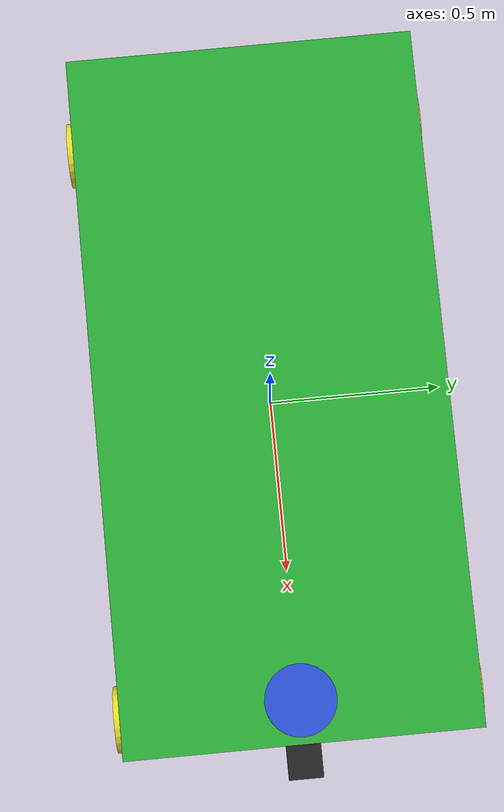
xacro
<?xml version="1.0"?>
<robot name="differential_drive_robot" xmlns:xacro="http://www.ros.org/wiki/xacro">

<xacro:property name="body_link_x_dim" value="2"/>
<xacro:property name="body_link_y_dim" value="1"/>
<xacro:property name="body_link_z_dim" value="0.6"/>

<xacro:property name="wheel_link_radius" value="0.1"/>
<xacro:property name="wheel_link_length" value="0.05"/>
<xacro:property name="wheel_link_z_location" value="-0.25"/>

<xacro:property name="body_density" value="2710.0"/>
<xacro:property name="wheel_density" value="2710.0"/>

<xacro:property name="pi_const" value="3.14159265"/>

<xacro:property name="body_mass" value="${body_density*body_link_x_dim*body_link_y_dim*body_link_z_dim}"/>

<xacro:property name="wheel_mass" value="${wheel_density*pi_const*wheel_link_radius*wheel_link_radius*wheel_link_length}"/>

<xacro:property name="Iz_wheel" value="${0.5*wheel_mass*wheel_link_radius*wheel_link_radius}"/>
<xacro:property name="I_wheel" value="${(1.0/12.0)*wheel_mass*(3.0*wheel_link_radius*wheel_link_radius+wheel_link_length*wheel_link_length)}"/>

<xacro:macro name="inertia_wheel">
    <inertial>
        <origin rpy="0 0 0" xyz="0 0 0"/>
        <mass value="${wheel_mass}"/>
        <inertia ixx="${I_wheel}" ixy="0.0" ixz="0.0" iyy="${I_wheel}" iyz="0" izz="${Iz_wheel}"/>
    </inertial>
</xacro:macro>

<xacro:include filename="$(find amr_1)/model/amr1.gazebo"/>

<!-- Dummy link for Gazebo compatibility -->
<link name="dummy">
</link>
<joint name="dummy_joint" type="fixed">
    <parent link="dummy"/>
    <child link="body_link"/>
</joint>

<!-- Main body link -->
<link name="body_link">
    <visual>
        <geometry>
            <box size="${body_link_x_dim} ${body_link_y_dim} ${body_link_z_dim}"/>
        </geometry>
        <origin rpy="0 0 0" xyz="0 0 0"/>
    </visual>

    <collision>
        <geometry>
            <box size="${body_link_x_dim} ${body_link_y_dim} ${body_link_z_dim}"/>
        </geometry>
        <origin rpy="0 0 0" xyz="0 0 0"/>
    </collision>

    <inertial>
        <origin rpy="0 0 0" xyz="0 0 0"/>
        <mass value="${body_mass}"/>
        <inertia
            ixx="${(1/12)*body_mass*(body_link_y_dim*body_link_y_dim + body_link_z_dim*body_link_z_dim)}"
            ixy="0" ixz="0"
            iyy="${(1/12)*body_mass*(body_link_x_dim*body_link_x_dim + body_link_z_dim*body_link_z_dim)}"
            iyz="0"
            izz="${(1/12)*body_mass*(body_link_y_dim*body_link_y_dim + body_link_x_dim*body_link_x_dim)}"/>
    </inertial>
</link>

<!-- Back right wheel -->
<joint name="wheel1_joint" type="continuous">
    <parent link="body_link"/>
    <child link="wheel1_link"/>
    <origin xyz="${-body_link_x_dim/2+1.2*wheel_link_radius} ${-body_link_y_dim/2-wheel_link_length/2} ${wheel_link_z_location}" rpy="0 0 0"/>
    <axis xyz="0 1 0"/>
    <limit effort="1000" velocity="1000"/>
    <dynamics damping="1.0" friction="1.0"/>
</joint>

<link name="wheel1_link">
    <visual>
        <origin rpy="1.570795 0 0" xyz="0 0 0"/>
        <geometry>
            <cylinder length="${wheel_link_length}" radius="${wheel_link_radius}"/>
        </geometry>
    </visual>
    <collision>
        <origin rpy="1.570795 0 0" xyz="0 0 0"/>
        <geometry>
            <cylinder length="${wheel_link_length}" radius="${wheel_link_radius}"/>
        </geometry>
    </collision>
    <xacro:inertia_wheel/>
</link>

<!-- Back left wheel -->
<joint name="wheel2_joint" type="continuous">
    <parent link="body_link"/>
    <child link="wheel2_link"/>
    <origin xyz="${-body_link_x_dim/2+1.2*wheel_link_radius} ${body_link_y_dim/2+wheel_link_length/2} ${wheel_link_z_location}" rpy="0 0 0"/>
    <axis xyz="0 1 0"/>
    <limit effort="1000" velocity="1000"/>
    <dynamics damping="1.0" friction="1.0"/>
</joint>

<link name="wheel2_link">
    <visual>
        <origin rpy="1.570795 0 0" xyz="0 0 0"/>
        <geometry>
            <cylinder length="${wheel_link_length}" radius="${wheel_link_radius}"/>
        </geometry>
    </visual>
    <collision>
        <origin rpy="1.570795 0 0" xyz="0 0 0"/>
        <geometry>
            <cylinder length="${wheel_link_length}" radius="${wheel_link_radius}"/>
        </geometry>
    </collision>
    <xacro:inertia_wheel/>
</link>

<!-- Front right wheel -->
<joint name="wheel3_joint" type="continuous">
    <parent link="body_link"/>
    <child link="wheel3_link"/>
    <origin xyz="${body_link_x_dim/2-1.2*wheel_link_radius} ${-body_link_y_dim/2-wheel_link_length/2} ${wheel_link_z_location}" rpy="0 0 0"/>
    <axis xyz="0 1 0"/>
    <limit effort="1000" velocity="1000"/>
    <dynamics damping="1.0" friction="1.0"/>
</joint>

<link name="wheel3_link">
    <visual>
        <origin rpy="1.570795 0 0" xyz="0 0 0"/>
        <geometry>
            <cylinder length="${wheel_link_length}" radius="${wheel_link_radius}"/>
        </geometry>
    </visual>
    <collision>
        <origin rpy="1.570795 0 0" xyz="0 0 0"/>
        <geometry>
            <cylinder length="${wheel_link_length}" radius="${wheel_link_radius}"/>
        </geometry>
    </collision>
    <xacro:inertia_wheel/>
</link>

<!-- Front left wheel -->
<joint name="wheel4_joint" type="continuous">
    <parent link="body_link"/>
    <child link="wheel4_link"/>
    <origin xyz="${body_link_x_dim/2-1.2*wheel_link_radius} ${body_link_y_dim/2+wheel_link_length/2} ${wheel_link_z_location}" rpy="0 0 0"/>
    <axis xyz="0 1 0"/>
    <limit effort="1000" velocity="1000"/>
    <dynamics damping="1.0" friction="1.0"/>
</joint>

<link name="wheel4_link">
    <visual>
        <origin rpy="1.570795 0 0" xyz="0 0 0"/>
        <geometry>
            <cylinder length="${wheel_link_length}" radius="${wheel_link_radius}"/>
        </geometry>
    </visual>
    <collision>
        <origin rpy="1.570795 0 0" xyz="0 0 0"/>
        <geometry>
            <cylinder length="${wheel_link_length}" radius="${wheel_link_radius}"/>
        </geometry>
    </collision>
    <xacro:inertia_wheel/>
</link>

<!-- Lidar Sensor -->
<joint name="lidar_joint" type="continuous">
    <parent link="body_link"/>
    <child link="lidar_link"/>
    <origin xyz="${body_link_x_dim/2-1.2*wheel_link_radius} 0 ${body_link_z_dim/2+wheel_link_length/2}" rpy="0 0 0"/>
    <axis xyz="0 0 1"/>
    <limit effort="1000" velocity="1000"/>
    <dynamics damping="1.0" friction="1.0"/>
</joint>

<link name="lidar_link">
    <visual>
        <origin rpy="0 0 0" xyz="0 0 0"/>
        <geometry>
            <cylinder length="${wheel_link_length}" radius="${wheel_link_radius}"/>
        </geometry>
    </visual>
    <collision>
        <origin rpy="0 0 0" xyz="0 0 0"/>
        <geometry>
            <cylinder length="${wheel_link_length}" radius="${wheel_link_radius}"/>
        </geometry>
    </collision>
    <xacro:inertia_wheel/>
</link>

  <!-- IMU Link -->
  <link name="imu_link">
    <inertial>
      <mass value="0.01"/>
      <origin xyz="0 0 0"/>
      <inertia ixx="0.00001" ixy="0" ixz="0"
               iyy="0.00001" iyz="0"
               izz="0.00001"/>
    </inertial>
    <visual>
      <origin rpy="0 0 0" xyz="0 0 0"/>
      <geometry>
        <box size="${wheel_link_radius} ${wheel_link_radius} ${wheel_link_radius}"/>
      </geometry>
    </visual>
    <collision>
      <origin rpy="0 0 0" xyz="0 0 0"/>
      <geometry>
        <box size="${wheel_link_radius} ${wheel_link_radius} ${wheel_link_radius}"/>
      </geometry>
    </collision>
  </link>

  <!-- IMU Fixed Joint -->
  <joint name="imu_joint" type="fixed">
    <parent link="body_link"/>
    <child link="imu_link"/>
    <origin xyz="0 0 0" rpy="0 0 0"/>
    <axis xyz="0 0 1"/>
    <limit effort="1000" velocity="1000"/>
    <dynamics damping="1.0" friction="1.0"/>
  </joint>

  <!-- Camera Link -->
  <link name="camera_link">
    <inertial>
      <mass value="0.01"/>
      <origin xyz="0 0 0"/>
      <inertia ixx="0.00001" ixy="0" ixz="0"
               iyy="0.00001" iyz="0"
               izz="0.00001"/>
    </inertial>
    <visual>
      <origin rpy="0 0 0" xyz="0 0 0"/>
      <geometry>
        <box size="${wheel_link_radius} ${wheel_link_radius} ${wheel_link_radius}"/>
      </geometry>
    </visual>
    <collision>
      <origin rpy="0 0 0" xyz="0 0 0"/>
      <geometry>
        <box size="${wheel_link_radius} ${wheel_link_radius} ${wheel_link_radius}"/>
      </geometry>
    </collision>
  </link>

  <!-- Fixed Joint to body_link -->
  <joint name="camera_joint" type="fixed">
    <parent link="body_link"/>
    <child link="camera_link"/>
    <origin xyz="${body_link_x_dim/2+wheel_link_radius/2} 0 0" rpy="0 0 0"/>
    <axis xyz="1 0 0"/>
    <limit effort="1000" velocity="1000"/>
    <dynamics damping="1.0" friction="1.0"/>
  </joint>

</robot>
